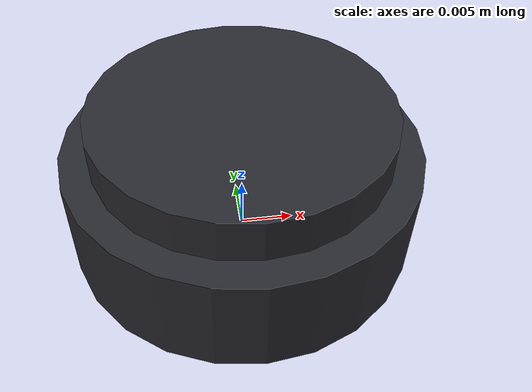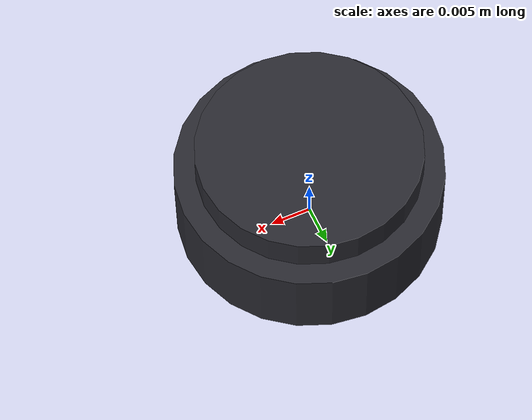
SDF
<?xml version="1.0" ?>
<!-- GENERATED by ros2_ws/src/bartender_gazebo/scripts/make_beer_and_opener.py.
     Edit that script and re-run it; edits here are overwritten. -->
<sdf version="1.9">
  <model name="opener_holster">
    <static>true</static>
    <link name="holster_link">

      <collision name="post_collision">
        <pose>0 0 0.005000 0 0 0</pose>
        <geometry><cylinder><radius>0.016100</radius>
          <length>0.010000</length></cylinder></geometry>
        <surface><friction><ode><mu>1.2</mu><mu2>1.2</mu2></ode></friction></surface>
      </collision>

      <collision name="post_lead_collision">
        <pose>0 0 0.012000 0 0 0</pose>
        <geometry><cylinder><radius>0.013500</radius>
          <length>0.004000</length></cylinder></geometry>
        <surface><friction><ode><mu>1.2</mu><mu2>1.2</mu2></ode></friction></surface>
      </collision>
      <visual name="post">
        <pose>0 0 0.005000 0 0 0</pose>
        <geometry><cylinder><radius>0.016100</radius>
          <length>0.010000</length></cylinder></geometry>
        <material>
          <ambient>0.10 0.10 0.12 1</ambient>
          <diffuse>0.16 0.16 0.19 1</diffuse>
        </material>
      </visual>
      <visual name="post_lead">
        <pose>0 0 0.012000 0 0 0</pose>
        <geometry><cylinder><radius>0.013500</radius>
          <length>0.004000</length></cylinder></geometry>
        <material>
          <ambient>0.10 0.10 0.12 1</ambient>
          <diffuse>0.16 0.16 0.19 1</diffuse>
        </material>
      </visual>
    </link>
  </model>
</sdf>
